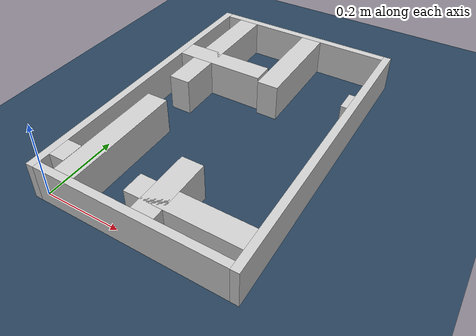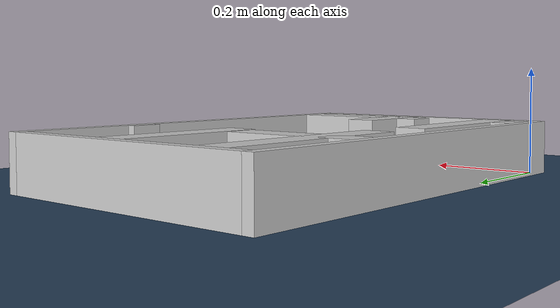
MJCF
<?xml version="1.0" ?>
<mujoco model="generated_real_template">
  <compiler angle="degree"/>
  <option timestep="0.002" integrator="implicitfast" iterations="100" cone="elliptic"/>
  <default>
    <geom density="1"/>
  </default>
  <asset>
    <texture builtin="gradient" height="3072" rgb1="0.3 0.5 0.7" rgb2="0 0 0" type="skybox" width="512"/>
    <texture builtin="checker" height="300" mark="edge" markrgb="0.8 0.8 0.8" name="groundplane" rgb1="0.2 0.3 0.4" rgb2="0.1 0.2 0.3" type="2d" width="300"/>
    <material name="groundplane" reflectance="0.2" texrepeat="5 5" texture="groundplane" texuniform="true"/>
  </asset>
  <worldbody>
    <light dir="0 0 -1" directional="true" pos="0 0 1.5"/>
    <geom name="floor" type="plane" condim="4" friction="0.5 0.005 0.001" material="groundplane" size="0 0 0.05"/>
    <body name="walls">
      <geom name="wall_boundary_left" type="box" condim="4" friction="1.0 0.005 0.0001" rgba="0.8 0.8 0.8 1" pos="-0.010000 0.387500 0.050000" euler="0 0 0.000000" size="0.010000 0.407500 0.050000"/>
      <geom name="wall_boundary_right" type="box" condim="4" friction="1.0 0.005 0.0001" rgba="0.8 0.8 0.8 1" pos="0.500000 0.387500 0.050000" euler="0 0 0.000000" size="0.010000 0.407500 0.050000"/>
      <geom name="wall_boundary_bottom" type="box" condim="4" friction="1.0 0.005 0.0001" rgba="0.8 0.8 0.8 1" pos="0.245000 -0.010000 0.050000" euler="0 0 0.000000" size="0.245000 0.010000 0.050000"/>
      <geom name="wall_boundary_top" type="box" condim="4" friction="1.0 0.005 0.0001" rgba="0.8 0.8 0.8 1" pos="0.245000 0.785000 0.050000" euler="0 0 0.000000" size="0.245000 0.010000 0.050000"/>
      <geom name="wall_inner_1_1" type="box" condim="4" friction="1.0 0.005 0.0001" rgba="0.8 0.8 0.8 1" pos="0.279296 0.086127 0.050000" euler="0 0 90.000000" size="0.086127 0.028500 0.050000"/>
      <geom name="wall_inner_1_2" type="box" condim="4" friction="1.0 0.005 0.0001" rgba="0.8 0.8 0.8 1" pos="0.279296 0.640523 0.050000" euler="0 0 90.000000" size="0.134477 0.028500 0.050000"/>
      <geom name="wall_inner_2_1" type="box" condim="4" friction="1.0 0.005 0.0001" rgba="0.8 0.8 0.8 1" pos="0.122048 0.548441 0.050000" euler="0 0 0.000000" size="0.122048 0.028500 0.050000"/>
      <geom name="wall_inner_2_2" type="box" condim="4" friction="1.0 0.005 0.0001" rgba="0.8 0.8 0.8 1" pos="0.482122 0.548441 0.050000" euler="0 0 0.000000" size="0.007878 0.028500 0.050000"/>
      <geom name="wall_inner_3_1" type="box" condim="4" friction="1.0 0.005 0.0001" rgba="0.8 0.8 0.8 1" pos="0.020910 0.055948 0.050000" euler="0 0 0.000000" size="0.020910 0.028500 0.050000"/>
      <geom name="wall_inner_3_2" type="box" condim="4" friction="1.0 0.005 0.0001" rgba="0.8 0.8 0.8 1" pos="0.349354 0.055948 0.050000" euler="0 0 0.000000" size="0.140646 0.028500 0.050000"/>
      <geom name="wall_inner_4_1" type="box" condim="4" friction="1.0 0.005 0.0001" rgba="0.8 0.8 0.8 1" pos="0.070956 0.159311 0.050000" euler="0 0 90.000000" size="0.159311 0.028500 0.050000"/>
      <geom name="wall_inner_4_2" type="box" condim="4" friction="1.0 0.005 0.0001" rgba="0.8 0.8 0.8 1" pos="0.070956 0.592331 0.050000" euler="0 0 90.000000" size="0.182669 0.028500 0.050000"/>
    </body>
  </worldbody>
</mujoco>
